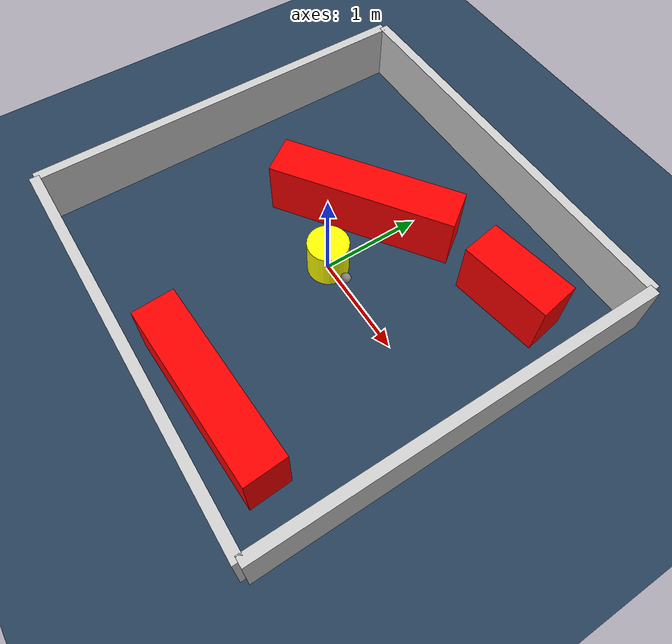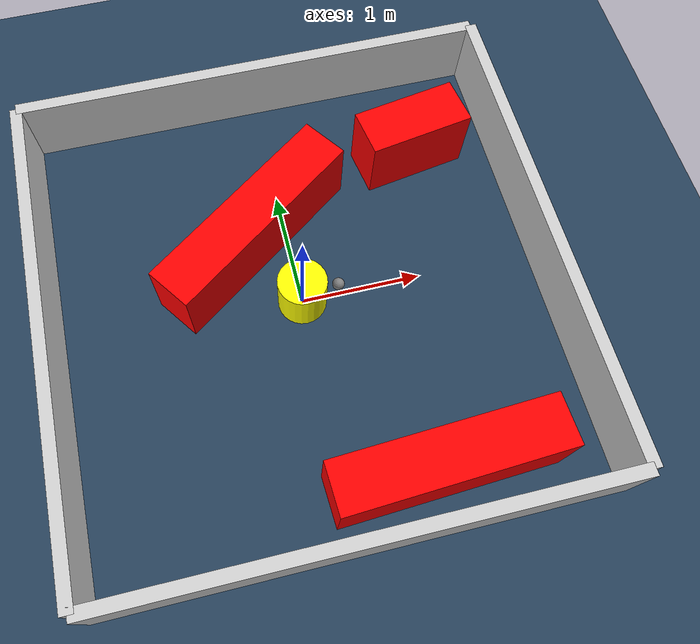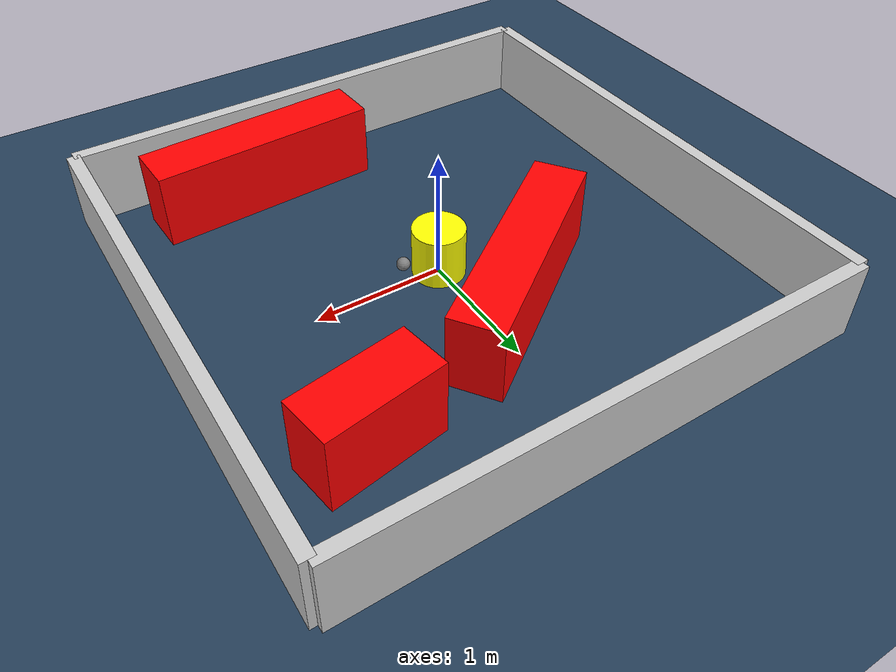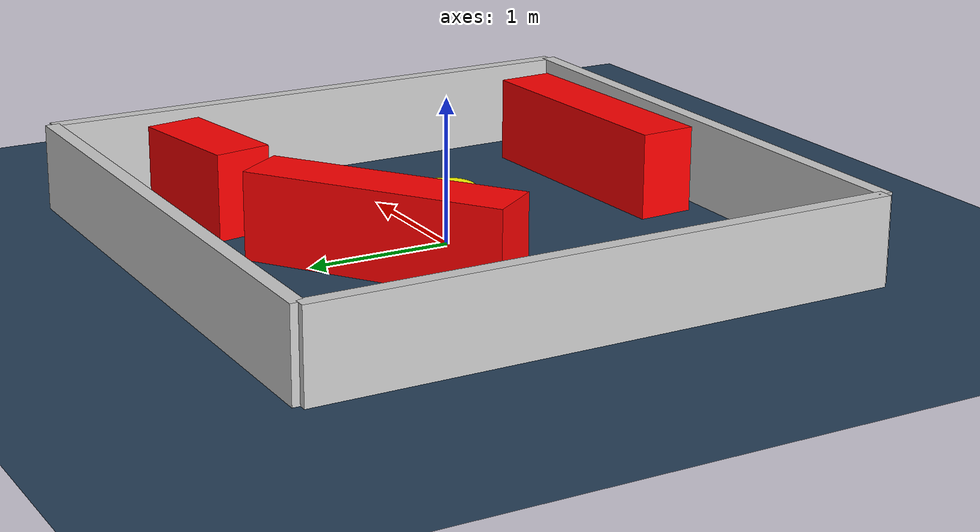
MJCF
<?xml version="1.0" ?>
<mujoco model="generated_environment">
  <option timestep="0.01" integrator="RK4" cone="elliptic"/>
  <default>
    <geom density="1"/>
  </default>
  <asset>
    <texture builtin="gradient" height="3072" rgb1="0.3 0.5 0.7" rgb2="0 0 0" type="skybox" width="512"/>
    <texture builtin="checker" height="300" mark="edge" markrgb="0.8 0.8 0.8" name="groundplane" rgb1="0.2 0.3 0.4" rgb2="0.1 0.2 0.3" type="2d" width="300"/>
    <material name="groundplane" reflectance="0.2" texrepeat="5 5" texture="groundplane" texuniform="true"/>
    <material name="robot" rgba="0.0 1.0 0.0 1"/>
  </asset>
  <worldbody>
    <light dir="0 0 -1" directional="true" pos="0 0 1.5"/>
    <geom condim="4" friction="1.0 0.005 0.001" material="groundplane" name="floor" size="0 0 0.05" type="plane"/>
    <body name="walls">
      <geom name="wall_1" condim="4" pos="-2.0 0.0 0.3" rgba="0.800000011920929 0.800000011920929 0.800000011920929 1.0" size="0.05 2.0 0.3" type="box"/>
      <geom name="wall_2" condim="4" pos="2.0 0.0 0.3" rgba="0.800000011920929 0.800000011920929 0.800000011920929 1.0" size="0.05 2.0 0.3" type="box"/>
      <geom name="wall_3" condim="4" pos="0.0 -2.0 0.3" rgba="0.800000011920929 0.800000011920929 0.800000011920929 1.0" size="2.0 0.05 0.3" type="box"/>
      <geom name="wall_4" condim="4" pos="0.0 2.0 0.3" rgba="0.800000011920929 0.800000011920929 0.800000011920929 1.0" size="2.0 0.05 0.3" type="box"/>
    </body>
    <body name="robot">
      <joint name="joint_x" type="slide" pos="0 0 0" axis="1 0 0"/>
      <joint name="joint_y" type="slide" pos="0 0 0" axis="0 1 0"/>
      <geom name="robot" type="sphere" pos="0.3 0.0 0.2" size="0.05" mass="5." friction="1.0 0.005 0.0001" condim="4" rgba="0.5 0.5 0.5 1.0"/>
      <site name="sensor_ball"/>
    </body>
    <body name="obstacle_movable_1">
      <geom name="obstacle_movable_1" condim="4" pos="0.0 0.0 0.2" euler="0 0 0.0" friction="1.0 0.005 0.001" rgba="1.0 1.0 0.0 1.0" size="0.2 0.2 0.0" type="cylinder" mass="0.1"/>
      <joint type="free"/>
    </body>
    <body name="obstacle_2_static">
      <geom name="obstacle_2_static" condim="4" pos="-0.2823673810329268 0.6059257706361352 0.3" euler="0 0 215.5017913609146" friction="1.0 0.005 0.001" rgba="1 0 0 1" size="0.9116700927926908 0.2 0.3" type="box"/>
    </body>
    <body name="obstacle_3_static">
      <geom name="obstacle_3_static" condim="4" pos="1.2257253366671002 1.170830889793759 0.3" euler="0 0 9.274170351565058" friction="1.0 0.005 0.001" rgba="1 0 0 1" size="0.44154600449342307 0.2 0.3" type="box"/>
    </body>
    <body name="obstacle_4_static">
      <geom name="obstacle_4_static" condim="4" pos="0.6964287858513776 -1.5827001509549992 0.3" euler="0 0 182.92541970511527" friction="1.0 0.005 0.001" rgba="1 0 0 1" size="0.8779620165121762 0.2 0.3" type="box"/>
    </body>
  </worldbody>
  <actuator>
    <motor name="actuator_x" joint="joint_x" gear="1" ctrlrange="-1 1"/>
    <motor name="actuator_y" joint="joint_y" gear="1" ctrlrange="-1 1"/>
  </actuator>
</mujoco>
